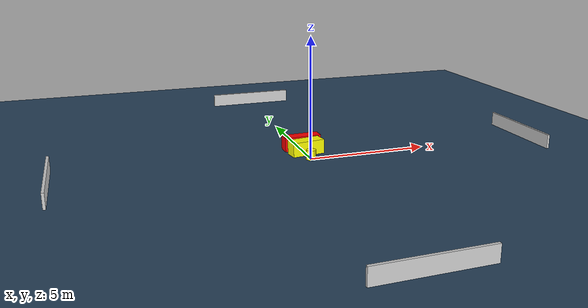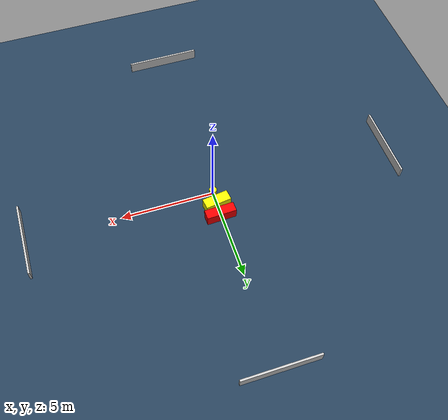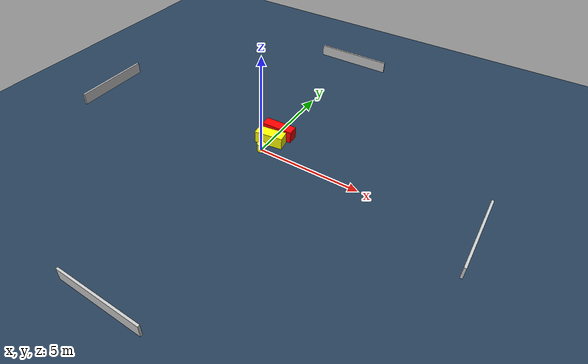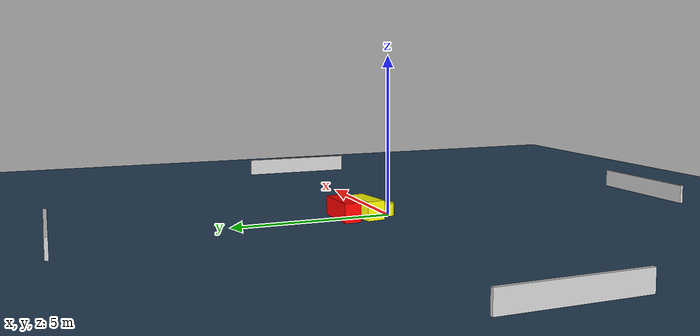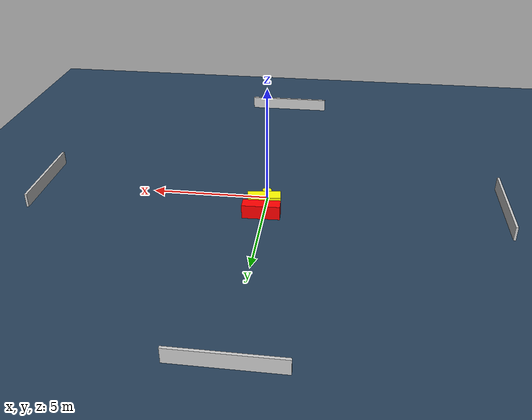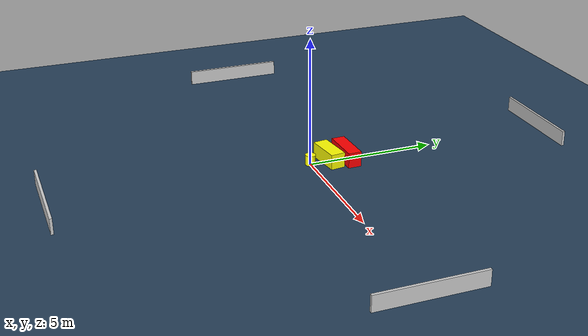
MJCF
<?xml version="1.0" ?>
<mujoco model="generated_environment">
  <option timestep="0.01" integrator="RK4" cone="elliptic"/>
  <default>
    <geom density="1"/>
  </default>
  <asset>
    <texture builtin="gradient" height="3072" name="skybox" rgb1="0.3 0.5 0.7" rgb2="0 0 0" type="skybox" width="512"/>
    <texture builtin="checker" height="300" name="groundplane" rgb1="0.2 0.3 0.4" rgb2="0.1 0.2 0.3" type="2d" width="300"/>
    <material name="groundplane" reflectance="0.2" texrepeat="5 5" texture="groundplane"/>
  </asset>
  <worldbody>
    <light dir="0 0 -1" directional="true" pos="0 0 1.5"/>
    <geom condim="3" friction="0.5 0.005 0.001" material="groundplane" name="floor" pos="0 0 0" size="0 0 0.05" type="plane"/>
    <body name="walls">
      <geom name="wall_1" condim="4" pos="-10.0 0.0 0.3" rgba="0.800000011920929 0.800000011920929 0.800000011920929 1.0" size="0.05 2.0 0.3" type="box"/>
      <geom name="wall_2" condim="4" pos="10.0 0.0 0.3" rgba="0.800000011920929 0.800000011920929 0.800000011920929 1.0" size="0.05 2.0 0.3" type="box"/>
      <geom name="wall_3" condim="4" pos="0.0 -10.0 0.3" rgba="0.800000011920929 0.800000011920929 0.800000011920929 1.0" size="2.0 0.05 0.3" type="box"/>
      <geom name="wall_4" condim="4" pos="0.0 10.0 0.3" rgba="0.800000011920929 0.800000011920929 0.800000011920929 1.0" size="2.0 0.05 0.3" type="box"/>
    </body>
    <body name="robot">
      <joint name="joint_x" type="slide" pos="0 0 0" axis="1 0 0"/>
      <joint name="joint_y" type="slide" pos="0 0 0" axis="0 1 0"/>
      <geom name="robot" type="cylinder" pos="0.0 0.0 0.2" size="0.2 0.2 0.0" mass="5.0" friction="1.0 0.005 0.0001" condim="4" rgba="1.0 1.0 0.0 1.0"/>
    </body>
    <body name="obstacle_1_movable">
      <geom name="obstacle_1_movable" condim="4" pos="0.03579656551001118 0.7514511176896287 0.3" euler="0 0 97.89354713104593" friction="0.0 0.005 0.001" rgba="1.0 1.0 0.0 1.0" size="0.2864881506828828 0.6965605336027809 0.3" type="box" mass="0.1"/>
      <joint type="free"/>
    </body>
    <body name="obstacle_2_static">
      <geom name="obstacle_2_static" condim="4" pos="0.06809903708550445 1.4579234529806666 0.3" euler="0 0 181.9740939363603" friction="0.0 0.005 0.001" rgba="1.0 0.0 0.0 1.0" size="0.7887757045051733 0.26152308781761485 0.3" type="box"/>
    </body>
  </worldbody>
  <actuator>
    <motor name="actuator_x" joint="joint_x" gear="1" ctrlrange="-1 1"/>
    <motor name="actuator_y" joint="joint_y" gear="1" ctrlrange="-1 1"/>
  </actuator>
</mujoco>
